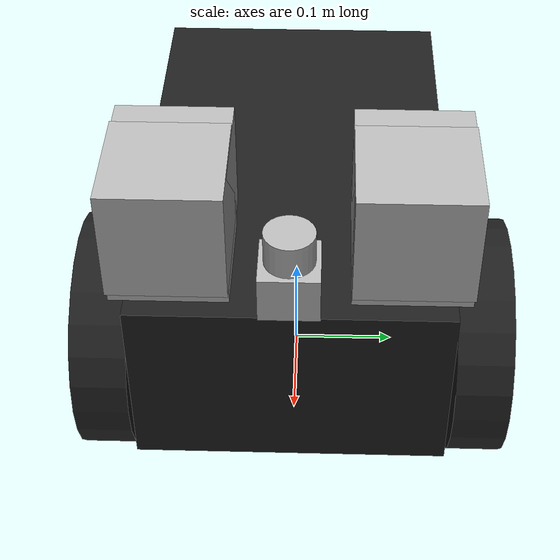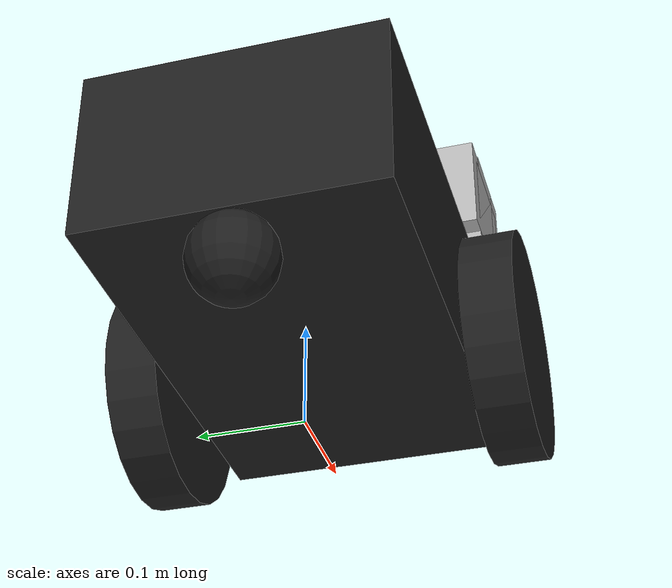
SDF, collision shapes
<?xml version="1.0" ?>
<sdf version="1.3">
    <model name="pioneer2dx">

        <link name="chassis">
            <pose>0 0 0.16 0 0 0</pose>
            <inertial>
                <mass>15.0</mass>
            </inertial>
            <collision name="collision">
                <geometry>
                    <box>
                        <size>0.445 0.277 0.17</size>
                    </box>
                </geometry>
            </collision>
            <collision name="castor_collision">
                <pose>-0.200 0 -0.12 0 0 0</pose>
                <geometry>
                    <sphere>
                        <radius>0.04</radius>
                    </sphere>
                </geometry>
                <surface>
                    <friction>
                        <ode>
                            <mu>0</mu>
                            <mu2>0</mu2>
                            <slip1>1.0</slip1>
                            <slip2>1.0</slip2>
                        </ode>
                    </friction>
                </surface>
            </collision>
            <visual name="visual">
                <pose>0 0 0.04 0 0 0</pose>
                <geometry>
                    <mesh>
                        <uri>model://pioneer2dx/meshes/chassis.dae</uri>
                    </mesh>
                </geometry>
            </visual>
            <visual name="castor_visual">
                <pose>-0.200 0 -0.12 0 0 0</pose>
                <geometry>
                    <sphere>
                        <radius>0.04</radius>
                    </sphere>
                </geometry>
                <material>
                    <script>
                        <uri>file://media/materials/scripts/gazebo.material</uri>
                        <name>Gazebo/FlatBlack</name>
                    </script>
                </material>
            </visual>
        </link>
        <link name="right_wheel">
            <pose>0.1 -.17 0.11 0 1.5707 1.5707</pose>
            <inertial>
                <mass>0.1</mass>
            </inertial>
            <collision name="collision">
                <geometry>
                    <cylinder>
                        <radius>0.11</radius>
                        <length>0.05</length>
                    </cylinder>
                </geometry>
                <surface>
                    <friction>
                        <ode>
                            <mu>100000.0</mu>
                            <mu2>100000.0</mu2>
                            <slip1>0.0</slip1>
                            <slip2>0.0</slip2>
                        </ode>
                    </friction>
                </surface>
            </collision>
            <visual name="visual">
                <geometry>
                    <cylinder>
                        <radius>0.11</radius>
                        <length>0.05</length>
                    </cylinder>
                </geometry>
                <material>
                    <script>
                        <uri>file://media/materials/scripts/gazebo.material</uri>
                        <name>Gazebo/FlatBlack</name>
                    </script>
                </material>
            </visual>
        </link>
        <link name="left_wheel">
            <pose>0.1 .17 0.11 0 1.5707 1.5707</pose>
            <inertial>
                <mass>0.5</mass>
            </inertial>
            <collision name="collision">
                <geometry>
                    <cylinder>
                        <radius>0.11</radius>
                        <length>0.05</length>
                    </cylinder>
                </geometry>
                <surface>
                    <friction>
                        <ode>
                            <mu>100000.0</mu>
                            <mu2>100000.0</mu2>
                            <slip1>0.0</slip1>
                            <slip2>0.0</slip2>
                        </ode>
                    </friction>
                </surface>
            </collision>
            <visual name="visual">
                <geometry>
                    <cylinder>
                        <radius>0.11</radius>
                        <length>0.05</length>
                    </cylinder>
                </geometry>
                <material>
                    <script>
                        <uri>file://media/materials/scripts/gazebo.material</uri>
                        <name>Gazebo/FlatBlack</name>
                    </script>
                </material>
            </visual>
        </link>

        <link name="laser">
            <pose>0.22 .0 0.3 0 0 0</pose>

		  <gravity>false</gravity>
		  <inertial>
		    <mass>0.1</mass>
		  </inertial>
		  <visual name="visual">
		    <geometry>
		      <mesh>
		        <uri>model://hokuyo/meshes/hokuyo.dae</uri>
		      </mesh>
		    </geometry>
		  </visual>

		  <collision name="collision-base">
		    <pose>0 0 -0.0145 0 0 0</pose>
		    <geometry>
		      <box>
		        <size>0.05 0.05 0.041</size>
		      </box>
		    </geometry>
		  </collision>

		  <collision name="collision-top">
		    <pose>0 0 0.0205 0 0 0</pose>
		    <geometry>
		      <cylinder>
		        <radius>0.021</radius>
		        <length>0.029</length>
		      </cylinder>
		    </geometry>
		  </collision>

		  <sensor name="laser" type="ray">
          <update_rate>20</update_rate>
		    <ray>
		      <scan>
		        <horizontal>
		          <samples>180</samples>
		          <resolution>1</resolution>
		          <min_angle>-1.57</min_angle>
		          <max_angle>1.57</max_angle>
		        </horizontal>
		      </scan>
		      <range>
		        <min>0.08</min>
		        <max>10</max>
		        <resolution>0.01</resolution>
		      </range>
		    </ray>

                    <plugin name="laser" filename="libros_laser.so" />

		    <always_on>1</always_on>
		    <visualize>true</visualize>

		  </sensor>
		</link>

      <link name="camera_bottom_body_left">
      	<pose>0.16 0.1 0.3 -1.57 0 0</pose>
            <inertial>
                <mass>0.5</mass>
            </inertial>
	 	 <visual name="visual">
            <geometry>
                <mesh>
                    <uri>model://pioneer2dxJde/meshes/sonyvid30/sonyvid30_bottom.dae</uri>
                    <scale>4 3 3</scale>
                </mesh>
            </geometry>
        </visual>

        <collision name="collision">
            <geometry>
                <box>
                    <size>0.1 0.1 0.1</size>
                </box>
            </geometry>
            <surface>
                <friction>
                    <ode>
                        <mu>100000.0</mu>
                        <mu2>100000.0</mu2>
                        <slip1>0.0</slip1>
                        <slip2>0.0</slip2>
                    </ode>
                </friction>
            </surface>
        </collision>
      </link>

      <link name="camera_column_body_left">

    	<pose>0.17 0.1 0.315 -1.57 0 0</pose>
        <inertial>
                <mass>0.5</mass>
        </inertial>
	 	<visual name="visual">
           <geometry>
               <mesh>
                   <uri>model://pioneer2dxJde/meshes/sonyvid30/sonyvid30_mid.dae</uri>
                   <scale>0.6 1 1</scale>
               </mesh>
           </geometry>
        </visual>

        <collision name="collision">
            <geometry>
                <box>
                    <size>0.1 0.1 0.1</size>
                </box>
            </geometry>
            <surface>
                <friction>
                    <ode>
                        <mu>100000.0</mu>
                        <mu2>100000.0</mu2>
                        <slip1>0.0</slip1>
                        <slip2>0.0</slip2>
                    </ode>
                </friction>
            </surface>
        </collision>

      </link>

    	<link name="camera_top_body_left">
        	<pose>0.14 0.1 0.31 -1.57 0 3.14</pose>
        <inertial>
                <mass>0.5</mass>
        </inertial>

        <sensor name='cam_pioneer_left' type='camera'>
        	<pose>0 0 0 -1.57 0 3.14</pose>
            <update_rate>20</update_rate>
            <camera>
              <horizontal_fov>1.57</horizontal_fov>
              <image>
              	<width>640</width>
              	<height>480</height>
              	<format>R8G8B8</format>
              </image>
              <clip>
		          <near>0.3</near>
		          <far>15</far>
              </clip>
            </camera>

            <plugin name='camera_dump' filename='libros_camera.so'/>
        </sensor>

	 	<visual name="visual">
           <geometry>
               <mesh>
                   <uri>model://pioneer2dxJde/meshes/sonyvid30/sonyvid30_top.dae</uri>
                   <scale>2 2 1.3</scale>
               </mesh>
           </geometry>
        </visual>

        <collision name="collision">
            <geometry>
                <box>
                    <size>0.1 0.1 0.1</size>
                </box>
            </geometry>
            <surface>
                <friction>
                    <ode>
                        <mu>100000.0</mu>
                        <mu2>100000.0</mu2>
                        <slip1>0.0</slip1>
                        <slip2>0.0</slip2>
                    </ode>
                </friction>
            </surface>
        </collision>

      </link>

            <link name="camera_bottom_body_right">
      	<pose>0.16 -0.1 0.3 -1.57 0 0</pose>
            <inertial>
                <mass>0.5</mass>
            </inertial>
	 	 <visual name="visual">
            <geometry>
                <mesh>
                    <uri>model://pioneer2dxJde/meshes/sonyvid30/sonyvid30_bottom.dae</uri>
                    <scale>4 3 3</scale>
                </mesh>
            </geometry>
        </visual>

        <collision name="collision">
            <geometry>
                <box>
                    <size>0.1 0.1 0.1</size>
                </box>
            </geometry>
            <surface>
                <friction>
                    <ode>
                        <mu>100000.0</mu>
                        <mu2>100000.0</mu2>
                        <slip1>0.0</slip1>
                        <slip2>0.0</slip2>
                    </ode>
                </friction>
            </surface>
        </collision>
      </link>

      <link name="camera_column_body_right">

    	<pose>0.17 -0.1 0.315 -1.57 0 0</pose>
        <inertial>
                <mass>0.5</mass>
        </inertial>
	 	<visual name="visual">
           <geometry>
               <mesh>
                   <uri>model://pioneer2dxJde/meshes/sonyvid30/sonyvid30_mid.dae</uri>
                   <scale>0.6 1 1</scale>
               </mesh>
           </geometry>
        </visual>

        <collision name="collision">
            <geometry>
                <box>
                    <size>0.1 0.1 0.1</size>
                </box>
            </geometry>
            <surface>
                <friction>
                    <ode>
                        <mu>100000.0</mu>
                        <mu2>100000.0</mu2>
                        <slip1>0.0</slip1>
                        <slip2>0.0</slip2>
                    </ode>
                </friction>
            </surface>
        </collision>

      </link>

    	<link name="camera_top_body_right">
        	<pose>0.14 -0.1 0.31 -1.57 0 3.14</pose>
        <inertial>
                <mass>0.5</mass>
        </inertial>

        <sensor name='cam_pioneer_right' type='camera'>
        	<pose>0 0 0 -1.57 0 3.14</pose>
            <update_rate>20</update_rate>
            <camera>
              <horizontal_fov>1.57</horizontal_fov>
              <image>
              	<width>640</width>
              	<height>480</height>
              	<format>R8G8B8</format>
              </image>
              <clip>
		          <near>0.3</near>
		          <far>15</far>
              </clip>
            </camera>

            <plugin name='camera_dump' filename='libros_camera.so'/>
        </sensor>

	 	<visual name="visual">
           <geometry>
               <mesh>
                   <uri>model://pioneer2dxJde/meshes/sonyvid30/sonyvid30_top.dae</uri>
                   <scale>2 2 1.3</scale>
               </mesh>
           </geometry>
        </visual>

        <collision name="collision">
            <geometry>
                <box>
                    <size>0.1 0.1 0.1</size>
                </box>
            </geometry>
            <surface>
                <friction>
                    <ode>
                        <mu>100000.0</mu>
                        <mu2>100000.0</mu2>
                        <slip1>0.0</slip1>
                        <slip2>0.0</slip2>
                    </ode>
                </friction>
            </surface>
        </collision>

      </link>
        <!--              JOINTS                         -->
		<joint type="revolute" name="pan_joint_right">
    		<pose>0 0 0 0 0 0</pose>
            <child>camera_bottom_body_right</child>
            <parent>camera_column_body_right</parent>
             <axis>
                <xyz>0 1 0</xyz>
                <limit>
                	<lower>0</lower>
                	<upper>0</upper>
                </limit>
            </axis>
		</joint>

		<joint type="revolute" name="tilt_joint_right">
    		<pose>0 0 0.0 0 0 0</pose>
            <child>camera_column_body_right</child>
            <parent>camera_top_body_right</parent>
             <axis>
                <xyz>1 0 0</xyz>
                <limit>
                	<lower>0</lower>
                	<upper>0</upper>
                </limit>
            </axis>
		</joint>

        <joint type="revolute" name="camera_right">
            <pose>0 0 0. 0 0 0</pose>
            <child>camera_bottom_body_right</child>
            <parent>chassis</parent>
            <axis>
                <xyz>0 0 0</xyz>
                <limit>
                	<lower>0.0</lower>
                	<upper>0.0</upper>
                </limit>
            </axis>
        </joint>

		<joint type="revolute" name="pan_joint_left">
    		<pose>0 0 0 0 0 0</pose>
            <child>camera_bottom_body_left</child>
            <parent>camera_column_body_left</parent>
             <axis>
                <xyz>0 1 0</xyz>
                <limit>
                	<lower>0</lower>
                	<upper>0</upper>
                </limit>
            </axis>
		</joint>

		<joint type="revolute" name="tilt_joint_left">
    		<pose>0 0 0.0 0 0 0</pose>
            <child>camera_column_body_left</child>
            <parent>camera_top_body_left</parent>
             <axis>
                <xyz>1 0 0</xyz>
                <limit>
                	<lower>0</lower>
                	<upper>0</upper>
                </limit>
            </axis>
		</joint>

        <joint type="revolute" name="camera_left">
            <pose>0 0 0 0 0 0</pose>
            <child>camera_bottom_body_left</child>
            <parent>chassis</parent>
            <axis>
                <xyz>0 0 0</xyz>
                <limit>
                	<lower>0.0</lower>
                	<upper>0.0</upper>
                </limit>
            </axis>
        </joint>

        <joint type="revolute" name="left_wheel_hinge">
            <pose>0 0 -0.03 0 0 0</pose>
            <child>left_wheel</child>
            <parent>chassis</parent>
            <axis>
                <xyz>0 1 0</xyz>
            </axis>
        </joint>
        <joint type="revolute" name="right_wheel_hinge">
            <pose>0 0 0.03 0 0 0</pose>
            <child>right_wheel</child>
            <parent>chassis</parent>
            <axis>
                <xyz>0 1 0</xyz>
            </axis>
        </joint>

        <joint type="revolute" name="joint_laser">
            <parent>chassis</parent>
            <child>laser</child>
            <axis>
                <xyz>0 0 0</xyz>
                <limit>
                    <lower>0</lower>
                    <upper>0</upper>
                </limit>
            </axis>
        </joint>
                <plugin filename="libros_encoders.so" name="encoders_pioneer"/>

                <plugin filename="libros_pose3d.so" name="pose3d_pioneer"/>

    </model>
</sdf>
